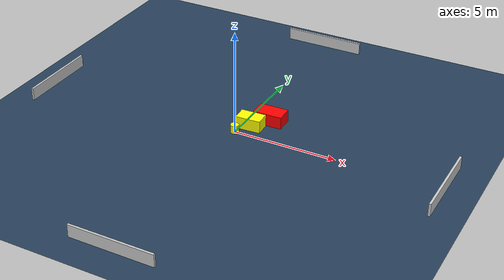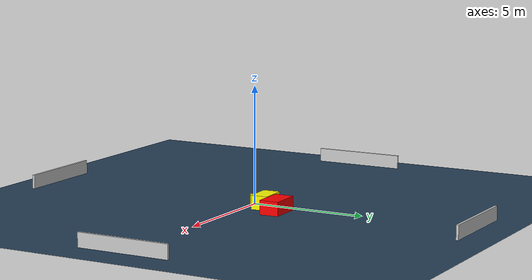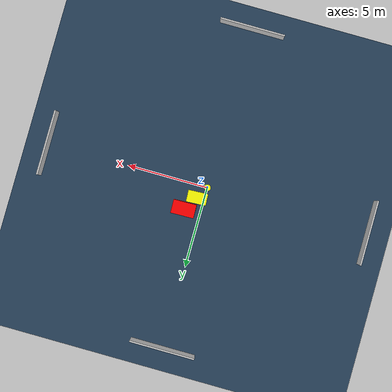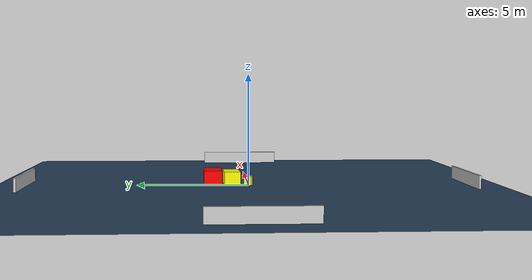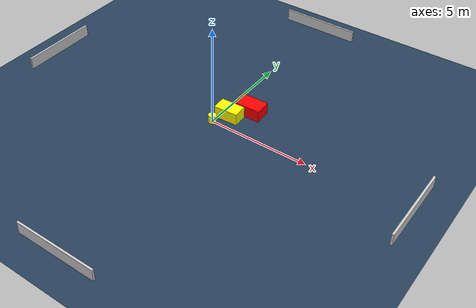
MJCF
<?xml version="1.0" ?>
<mujoco model="generated_environment">
  <option timestep="0.01" integrator="RK4" cone="elliptic"/>
  <default>
    <geom density="1"/>
  </default>
  <asset>
    <texture builtin="gradient" height="3072" name="skybox" rgb1="0.3 0.5 0.7" rgb2="0 0 0" type="skybox" width="512"/>
    <texture builtin="checker" height="300" name="groundplane" rgb1="0.2 0.3 0.4" rgb2="0.1 0.2 0.3" type="2d" width="300"/>
    <material name="groundplane" reflectance="0.2" texrepeat="5 5" texture="groundplane"/>
  </asset>
  <worldbody>
    <light dir="0 0 -1" directional="true" pos="0 0 1.5"/>
    <geom condim="3" friction="0.5 0.005 0.001" material="groundplane" name="floor" pos="0 0 0" size="0 0 0.05" type="plane"/>
    <body name="walls">
      <geom name="wall_1" condim="4" pos="-10.0 0.0 0.3" rgba="0.800000011920929 0.800000011920929 0.800000011920929 1.0" size="0.05 2.0 0.3" type="box"/>
      <geom name="wall_2" condim="4" pos="10.0 0.0 0.3" rgba="0.800000011920929 0.800000011920929 0.800000011920929 1.0" size="0.05 2.0 0.3" type="box"/>
      <geom name="wall_3" condim="4" pos="0.0 -10.0 0.3" rgba="0.800000011920929 0.800000011920929 0.800000011920929 1.0" size="2.0 0.05 0.3" type="box"/>
      <geom name="wall_4" condim="4" pos="0.0 10.0 0.3" rgba="0.800000011920929 0.800000011920929 0.800000011920929 1.0" size="2.0 0.05 0.3" type="box"/>
    </body>
    <body name="robot">
      <joint name="joint_x" type="slide" pos="0 0 0" axis="1 0 0"/>
      <joint name="joint_y" type="slide" pos="0 0 0" axis="0 1 0"/>
      <geom name="robot" type="cylinder" pos="0.0 0.0 0.2" size="0.2 0.2 0.0" mass="5.0" friction="1.0 0.005 0.0001" condim="4" rgba="1.0 1.0 0.0 1.0"/>
    </body>
    <body name="obstacle_1_movable">
      <geom name="obstacle_1_movable" condim="4" pos="0.4343915751845819 0.7479212096956216 0.3" euler="0 0 182.89626010007004" friction="0.0 0.005 0.001" rgba="1.0 1.0 0.0 1.0" size="0.6009653832184039 0.35913366553185994 0.3" type="box" mass="0.1"/>
      <joint type="free"/>
    </body>
    <body name="obstacle_2_static">
      <geom name="obstacle_2_static" condim="4" pos="1.0327143363630849 1.6006898540616705 0.3" euler="0 0 181.240614190488" friction="0.0 0.005 0.001" rgba="1.0 0.0 0.0 1.0" size="0.7035934086201372 0.4126271494409105 0.3" type="box"/>
    </body>
  </worldbody>
  <actuator>
    <motor name="actuator_x" joint="joint_x" gear="1" ctrlrange="-1 1"/>
    <motor name="actuator_y" joint="joint_y" gear="1" ctrlrange="-1 1"/>
  </actuator>
</mujoco>
